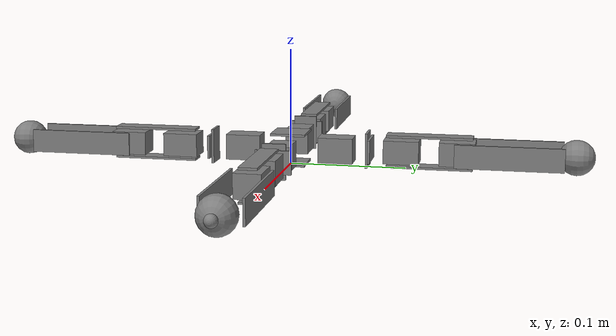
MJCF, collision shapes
<?xml version="1.0" ?>
<!-- Generated using onshape-to-robot -->
<!-- OnShape https://cad.onshape.com/documents/11a7f59e37f711d732274fca/w/7807518dc67487ad405722c8/e/5233c6445c575366a6cc0d50 -->
<mujoco model="quadruped_mujoco">
    <compiler angle="radian" meshdir="assets" autolimits="true"/>
    <option noslip_iterations="1"/>
    <default>
        <default class="quadruped_mujoco">
            <joint frictionloss="0.1" armature="0.005"/>
            <position kp="50" dampratio="1"/>
            <default class="visual">
                <geom type="mesh" contype="0" conaffinity="0" group="2"/>
            </default>
            <default class="collision">
                <geom group="3"/>
            </default>
        </default>
    </default>
    <worldbody>
        <!-- Link body -->
        <body name="body" pos="0 0 0" quat="1 0 0 0" childclass="quadruped_mujoco">
            <freejoint name="body_freejoint"/>
            <inertial pos="-2.68123e-18 7.95593e-19 0.0143384" mass="0.0808736" fullinertia="7.37408e-05 7.37408e-05 0.000135878 -7.58445e-21 -2.2764e-21 1.71779e-21"/>
            <!-- Part body -->
            <!-- Mesh body -->
            <geom type="mesh" class="visual" pos="-4.02184e-18 1.95168e-18 0.0143384" quat="1 0 0 0" mesh="body" material="body_material"/>
            <geom class="collision" pos="0 3.46945e-18 0.0275" quat="0 1 0 0" type="box" size="0.015 0.015 0.001"/>
            <geom class="collision" pos="0 0 0.0011" quat="1 0 0 0" type="box" size="0.015 0.015 0.001"/>
            <geom class="collision" pos="-2.48001e-18 -0.0405 0.0143" quat="0 0 0 1" type="box" size="0.01 0.015 0.011"/>
            <geom class="collision" pos="0.0405 8.66205e-18 0.0143" quat="0.707107 0 0 -0.707107" type="box" size="0.01 0.015 0.011"/>
            <geom class="collision" pos="-2.87964e-18 0.0405 0.0143" quat="1 0 0 4.16334e-16" type="box" size="0.01 0.015 0.011"/>
            <geom class="collision" pos="-0.0405 -2.24473e-18 0.0143" quat="0.707107 -2.77556e-16 -1.11022e-16 0.707107" type="box" size="0.01 0.015 0.011"/>
            <!-- Link doubleu -->
            <body name="doubleu" pos="-0.0485 -8.5303e-18 -0.0007" quat="3.98474e-16 -0.707107 -0.707107 5.80555e-16">
                <!-- Joint from body to doubleu -->
                <joint name="leg1_a" type="hinge"/>
                <inertial pos="4.20868e-19 -0.0203 -0.01615" mass="0.00830698" fullinertia="2.78361e-06 1.9255e-06 2.78361e-06 -3.98268e-22 -3.70822e-22 1.87309e-22"/>
                <!-- Part doubleu -->
                <!-- Mesh doubleu -->
                <geom type="mesh" class="visual" pos="4.20868e-19 -0.0203 -0.01615" quat="4.75548e-16 0.707107 0.707107 -6.12841e-16" mesh="doubleu" material="doubleu_material"/>
                <geom class="collision" pos="-2.25526e-31 -0.0191 -0.01615" quat="0.707107 0.707107 -0 -1.95559e-30" type="box" size="0.01 0.015 0.001"/>
                <geom class="collision" pos="-4.23155e-18 -0.0215 -0.01615" quat="0.5 -0.5 -0.5 -0.5" type="box" size="0.01 0.015 0.001"/>
                <!-- Link platesblock -->
                <body name="platesblock" pos="0.015 -0.0406 -0.01615" quat="0.707107 5.10529e-15 -0.707107 -5.14085e-15">
                    <!-- Joint from doubleu to platesblock -->
                    <joint name="leg1_b" type="hinge"/>
                    <inertial pos="5.09544e-15 -0.0315 0.0150372" mass="0.0417755" fullinertia="2.98279e-05 4.6241e-06 2.99828e-05 -2.99773e-12 -9.43397e-21 2.38053e-19"/>
                    <!-- Part platesblock -->
                    <!-- Mesh platesblock -->
                    <geom type="mesh" class="visual" pos="5.09835e-15 -0.0315 0.0150372" quat="0.5 -0.5 -0.5 0.5" mesh="platesblock" material="platesblock_material"/>
                    <geom class="collision" pos="0.0131 -0.0315 0.015" quat="0.5 0.5 -0.5 -0.5" type="box" size="0.0365 0.0075 0.001"/>
                    <geom class="collision" pos="-0.0132 -0.0315 0.015" quat="0.5 0.5 -0.5 -0.5" type="box" size="0.0365 0.0075 0.001"/>
                    <geom class="collision" pos="1.32467e-15 -0.008 0.015" quat="1 1.38778e-17 1.11022e-16 6.60305e-14" type="box" size="0.01 0.015 0.011"/>
                    <geom class="collision" pos="8.87894e-15 -0.055 0.015" quat="6.61062e-14 0 -5.32907e-15 -1" type="box" size="0.01 0.015 0.011"/>
                    <!-- Link leg -->
                    <body name="leg" pos="9.9365e-15 -0.063 5.75928e-16" quat="5.75726e-14 -2.77556e-17 5.32907e-15 1">
                        <!-- Joint from platesblock to leg -->
                        <joint name="leg1_c" type="hinge"/>
                        <inertial pos="-1.68362e-17 0.0533786 0.015" mass="0.0154162" fullinertia="2.13816e-05 3.58407e-06 1.88204e-05 5.18659e-34 1.18621e-36 -3.34624e-35"/>
                        <!-- Part leg -->
                        <!-- Mesh leg -->
                        <geom type="mesh" class="visual" pos="-1.73472e-17 0.0533786 0.015" quat="0.5 -0.5 0.5 -0.5" mesh="leg" material="leg_material"/>
                        <geom class="collision" pos="1.18955e-18 0.035 -0.001" quat="0.707107 0.707107 -0 1.40248e-30" type="box" size="0.01 0.001 0.045"/>
                        <geom class="collision" pos="1.08167e-18 0.035 0.031" quat="0.707107 0.707107 -0 1.40248e-30" type="box" size="0.01 0.001 0.045"/>
                        <geom class="collision" pos="1.69072e-18 0.09 0.015" quat="0.707107 0.707107 -0 1.40248e-30" type="sphere" size="0.015"/>
                    </body>
                </body>
            </body>
            <!-- Link doubleu_2 -->
            <body name="doubleu_2" pos="-4.75344e-19 -0.0485 -0.0007" quat="3.33067e-16 -1.64508e-15 1 -1.39654e-16">
                <!-- Joint from body to doubleu_2 -->
                <joint name="leg2_a" type="hinge"/>
                <inertial pos="-2.11219e-17 -0.0203 -0.015" mass="0.00830698" fullinertia="2.78361e-06 1.9255e-06 2.78361e-06 -2.00168e-21 -2.69222e-22 9.24504e-21"/>
                <!-- Part doubleu_2 -->
                <!-- Mesh doubleu_2 -->
                <geom type="mesh" class="visual" pos="-2.11219e-17 -0.0203 -0.015" quat="2.22045e-16 -1.50248e-15 1 -2.76539e-17" mesh="doubleu_2" material="doubleu_2_material"/>
                <geom class="collision" pos="-4.7317e-17 -0.0215 -0.015" quat="0.5 -0.5 -0.5 -0.5" type="box" size="0.01 0.015 0.001"/>
                <geom class="collision" pos="6.16298e-33 -0.0191 -0.015" quat="0.707107 0.707107 0 2.78124e-32" type="box" size="0.01 0.015 0.001"/>
                <!-- Link platesblock_2 -->
                <body name="platesblock_2" pos="0.015 -0.0406 -0.015" quat="0.5 -0.5 -0.5 0.5">
                    <!-- Joint from doubleu_2 to platesblock_2 -->
                    <joint name="leg2_b" type="hinge"/>
                    <inertial pos="-0.0315 -3.93756e-16 0.0150372" mass="0.0417755" fullinertia="4.6241e-06 2.98279e-05 2.99828e-05 2.99773e-12 1.27996e-20 -5.0039e-21"/>
                    <!-- Part platesblock_2 -->
                    <!-- Mesh platesblock_2 -->
                    <geom type="mesh" class="visual" pos="-0.0315 -3.95517e-16 0.0150372" quat="0.5 -0.5 -0.5 -0.5" mesh="platesblock_2" material="platesblock_2_material"/>
                    <geom class="collision" pos="-0.0315 -0.0131 0.015" quat="9.99201e-16 9.33878e-16 -0.707107 -0.707107" type="box" size="0.0365 0.0075 0.001"/>
                    <geom class="collision" pos="-0.0315 0.0132 0.015" quat="6.72223e-16 1.25117e-15 -0.707107 -0.707107" type="box" size="0.0365 0.0075 0.001"/>
                    <geom class="collision" pos="-0.008 3.4288e-16 0.015" quat="0.707107 0 0 -0.707107" type="box" size="0.01 0.015 0.011"/>
                    <geom class="collision" pos="-0.055 -1.12171e-15 0.015" quat="0.707107 -8.88178e-16 -1.11022e-15 0.707107" type="box" size="0.01 0.015 0.011"/>
                    <!-- Link leg_2 -->
                    <body name="leg_2" pos="-0.063 -1.14492e-15 -2.60209e-17" quat="0.707107 -9.25028e-16 -7.77156e-16 0.707107">
                        <!-- Joint from platesblock_2 to leg_2 -->
                        <joint name="leg2_c" type="hinge"/>
                        <inertial pos="-1.72851e-17 0.0533786 0.015" mass="0.0154162" fullinertia="2.13816e-05 3.58407e-06 1.88204e-05 1.37976e-34 6.14915e-36 -4.08223e-36"/>
                        <!-- Part leg_2 -->
                        <!-- Mesh leg_2 -->
                        <geom type="mesh" class="visual" pos="-1.73472e-17 0.0533786 0.015" quat="2.02369e-14 0.707107 -1.96509e-14 0.707107" mesh="leg_2" material="leg_2_material"/>
                        <geom class="collision" pos="1.28349e-18 0.035 -0.001" quat="0.707107 0.707107 -0 4.87538e-32" type="box" size="0.01 0.001 0.045"/>
                        <geom class="collision" pos="3.67559e-19 0.035 0.031" quat="0.707107 0.707107 -0 4.87538e-32" type="box" size="0.01 0.001 0.045"/>
                        <geom class="collision" pos="1.10308e-18 0.09 0.015" quat="0.707107 0.707107 -0 4.87538e-32" type="sphere" size="0.015"/>
                    </body>
                </body>
            </body>
            <!-- Link doubleu_3 -->
            <body name="doubleu_3" pos="0.0485 3.19754e-17 -0.0007" quat="3.90397e-16 0.707107 0.707107 -4.17101e-16">
                <!-- Joint from body to doubleu_3 -->
                <joint name="leg3_a" type="hinge"/>
                <inertial pos="-5.56769e-19 0.0203 -0.01615" mass="0.00830698" fullinertia="2.78361e-06 1.9255e-06 2.78361e-06 1.84599e-21 -2.19179e-21 -3.30468e-21"/>
                <!-- Part doubleu_3 -->
                <!-- Mesh doubleu_3 -->
                <geom type="mesh" class="visual" pos="-5.56769e-19 0.0203 -0.01615" quat="3.66569e-16 -0.707107 -0.707107 5.18459e-16" mesh="doubleu_3" material="doubleu_3_material"/>
                <geom class="collision" pos="-6.18683e-18 0.0215 -0.01615" quat="0.5 0.5 0.5 -0.5" type="box" size="0.01 0.015 0.001"/>
                <geom class="collision" pos="1.16519e-32 0.0191 -0.01615" quat="0.707107 -0.707107 -0 -1.656e-31" type="box" size="0.01 0.015 0.001"/>
                <!-- Link platesblock_3 -->
                <body name="platesblock_3" pos="-0.015 0.0406 -0.01615" quat="0.5 -0.5 0.5 -0.5">
                    <!-- Joint from doubleu_3 to platesblock_3 -->
                    <joint name="leg3_b" type="hinge"/>
                    <inertial pos="-0.0315 -1.26282e-15 0.0150372" mass="0.0417755" fullinertia="4.6241e-06 2.98279e-05 2.99828e-05 2.99773e-12 1.21343e-20 -2.02021e-21"/>
                    <!-- Part platesblock_3 -->
                    <!-- Mesh platesblock_3 -->
                    <geom type="mesh" class="visual" pos="-0.0315 -1.26288e-15 0.0150372" quat="2.54853e-14 -2.77416e-14 0.707107 0.707107" mesh="platesblock_3" material="platesblock_3_material"/>
                    <geom class="collision" pos="-0.0315 -0.0131 0.015" quat="6.11317e-15 7.40046e-15 -0.707107 -0.707107" type="box" size="0.0365 0.0075 0.001"/>
                    <geom class="collision" pos="-0.0315 0.0132 0.015" quat="7.42612e-15 6.14462e-15 -0.707107 -0.707107" type="box" size="0.0365 0.0075 0.001"/>
                    <geom class="collision" pos="-0.008 -1.00186e-16 0.015" quat="0.707107 -1.02668e-18 2.22045e-16 -0.707107" type="box" size="0.01 0.015 0.011"/>
                    <geom class="collision" pos="-0.055 -2.43769e-15 0.015" quat="0.707107 1.72703e-16 -1.55431e-15 0.707107" type="box" size="0.01 0.015 0.011"/>
                    <!-- Link leg_3 -->
                    <body name="leg_3" pos="-0.063 -2.5431e-15 6.41848e-17" quat="0.707107 1.87399e-15 -1.66533e-15 0.707107">
                        <!-- Joint from platesblock_3 to leg_3 -->
                        <joint name="leg3_c" type="hinge"/>
                        <inertial pos="-1.68795e-17 0.0533786 0.015" mass="0.0154162" fullinertia="2.13816e-05 3.58407e-06 1.88204e-05 3.68123e-35 6.16462e-36 -2.58096e-34"/>
                        <!-- Part leg_3 -->
                        <!-- Mesh leg_3 -->
                        <geom type="mesh" class="visual" pos="-1.73472e-17 0.0533786 0.015" quat="0.5 0.5 0.5 0.5" mesh="leg_3" material="leg_3_material"/>
                        <geom class="collision" pos="2.12482e-18 0.035 -0.001" quat="0.707107 0.707107 -0 -0" type="box" size="0.01 0.001 0.045"/>
                        <geom class="collision" pos="1.65589e-18 0.035 0.031" quat="0.707107 0.707107 -0 -0" type="box" size="0.01 0.001 0.045"/>
                        <geom class="collision" pos="1.71688e-18 0.09 0.015" quat="0.707107 0.707107 -0 -0" type="sphere" size="0.015"/>
                        <!-- Frame leg_tip (dummy link + fixed joint) -->
                        <site name="leg_tip" pos="-3.64292e-17 0.1053 0.015" quat="2.85151e-17 1.33078e-16 -0.707107 -0.707107"/>
                    </body>
                </body>
            </body>
            <!-- Link doubleu_4 -->
            <body name="doubleu_4" pos="3.81639e-17 0.0485 -0.0007" quat="1.11022e-16 1.0542e-16 -1 3.76491e-15">
                <!-- Joint from body to doubleu_4 -->
                <joint name="leg4_a" type="hinge"/>
                <inertial pos="-4.61075e-17 0.0203 -0.01615" mass="0.00830698" fullinertia="2.78361e-06 1.9255e-06 2.78361e-06 4.31663e-21 1.74197e-22 -3.17881e-20"/>
                <!-- Part doubleu_4 -->
                <!-- Mesh doubleu_4 -->
                <geom type="mesh" class="visual" pos="-4.61075e-17 0.0203 -0.01615" quat="0 1.09762e-16 -1 3.55993e-15" mesh="doubleu_4" material="doubleu_4_material"/>
                <geom class="collision" pos="-9.72883e-17 0.0215 -0.01615" quat="0.5 0.5 0.5 -0.5" type="box" size="0.01 0.015 0.001"/>
                <geom class="collision" pos="0 0.0191 -0.01615" quat="0.707107 -0.707107 -0 -4.15692e-33" type="box" size="0.01 0.015 0.001"/>
                <!-- Link platesblock_4 -->
                <body name="platesblock_4" pos="-0.015 0.0406 -0.01615" quat="0.5 -0.5 0.5 -0.5">
                    <!-- Joint from doubleu_4 to platesblock_4 -->
                    <joint name="leg4_b" type="hinge"/>
                    <inertial pos="-0.0315 -5.44238e-16 0.0135372" mass="0.0417755" fullinertia="4.6241e-06 2.98279e-05 2.99828e-05 2.99773e-12 -6.82938e-20 8.10969e-21"/>
                    <!-- Part platesblock_4 -->
                    <!-- Mesh platesblock_4 -->
                    <geom type="mesh" class="visual" pos="-0.0315 -5.46438e-16 0.0135372" quat="0.5 -0.5 0.5 0.5" mesh="platesblock_4" material="platesblock_4_material"/>
                    <geom class="collision" pos="-0.0315 -0.0131 0.0135" quat="3.33067e-16 2.1654e-15 -0.707107 -0.707107" type="box" size="0.0365 0.0075 0.001"/>
                    <geom class="collision" pos="-0.0315 0.0132 0.0135" quat="9.4369e-16 1.33227e-15 -0.707107 -0.707107" type="box" size="0.0365 0.0075 0.001"/>
                    <geom class="collision" pos="-0.008 2.01842e-16 0.0135" quat="0.707107 1.27974e-15 1.66533e-15 -0.707107" type="box" size="0.01 0.015 0.011"/>
                    <geom class="collision" pos="-0.055 -1.27734e-15 0.0135" quat="0.707107 7.49401e-16 -2.55351e-15 0.707107" type="box" size="0.01 0.015 0.011"/>
                    <!-- Link leg_4 -->
                    <body name="leg_4" pos="-0.063 -1.22471e-15 -0.0015" quat="0.707107 3.10617e-15 8.88178e-16 -0.707107">
                        <!-- Joint from platesblock_4 to leg_4 -->
                        <joint name="leg4_c" type="hinge"/>
                        <inertial pos="-1.83109e-17 -0.0533786 0.015" mass="0.0154162" fullinertia="2.13816e-05 3.58407e-06 1.88204e-05 2.07075e-34 -1.18725e-35 -1.43223e-36"/>
                        <!-- Part leg_4 -->
                        <!-- Mesh leg_4 -->
                        <geom type="mesh" class="visual" pos="-1.9082e-17 -0.0533786 0.015" quat="2.76434e-14 0.707107 2.58682e-14 -0.707107" mesh="leg_4" material="leg_4_material"/>
                        <geom class="collision" pos="2.18025e-20 -0.035 0.031" quat="0.707107 -0.707107 0 1.33787e-30" type="box" size="0.01 0.001 0.045"/>
                        <geom class="collision" pos="5.49158e-19 -0.035 -0.001" quat="0.707107 -0.707107 0 1.33787e-30" type="box" size="0.01 0.001 0.045"/>
                        <geom class="collision" pos="-4.08409e-19 -0.09 0.015" quat="0.707107 -0.707107 0 1.33787e-30" type="sphere" size="0.015"/>
                    </body>
                </body>
            </body>
        </body>
    </worldbody>
    <asset>
        <mesh file="merged/platesblock_4.stl"/>
        <mesh file="merged/platesblock_3.stl"/>
        <mesh file="merged/leg_3.stl"/>
        <mesh file="merged/leg_4.stl"/>
        <mesh file="merged/platesblock_2.stl"/>
        <mesh file="merged/doubleu_2.stl"/>
        <mesh file="merged/doubleu_4.stl"/>
        <mesh file="merged/leg.stl"/>
        <mesh file="merged/doubleu_3.stl"/>
        <mesh file="merged/platesblock.stl"/>
        <mesh file="merged/leg_2.stl"/>
        <mesh file="merged/body.stl"/>
        <mesh file="merged/doubleu.stl"/>
        <material name="body_material" rgba="0.546445 0.490703 0.424602 1"/>
        <material name="doubleu_material" rgba="0.972549 0.529412 0.00392157 1"/>
        <material name="platesblock_material" rgba="0.5601 0.491944 0.411121 1"/>
        <material name="leg_material" rgba="0.972549 0.529412 0.00392157 1"/>
        <material name="doubleu_2_material" rgba="0.972549 0.529412 0.00392157 1"/>
        <material name="platesblock_2_material" rgba="0.5601 0.491944 0.411121 1"/>
        <material name="leg_2_material" rgba="0.972549 0.529412 0.00392157 1"/>
        <material name="doubleu_3_material" rgba="0.972549 0.529412 0.00392157 1"/>
        <material name="platesblock_3_material" rgba="0.5601 0.491944 0.411121 1"/>
        <material name="leg_3_material" rgba="0.972549 0.529412 0.00392157 1"/>
        <material name="doubleu_4_material" rgba="0.972549 0.529412 0.00392157 1"/>
        <material name="platesblock_4_material" rgba="0.5601 0.491944 0.411121 1"/>
        <material name="leg_4_material" rgba="0.972549 0.529412 0.00392157 1"/>
    </asset>
    <actuator>
        <position class="quadruped_mujoco" name="leg1_c" joint="leg1_c" forcerange="-1 1" ctrlrange="-3 3"/>
        <position class="quadruped_mujoco" name="leg1_b" joint="leg1_b" forcerange="-1 1" ctrlrange="-3 3"/>
        <position class="quadruped_mujoco" name="leg1_a" joint="leg1_a" forcerange="-1 1" ctrlrange="-3 3"/>
        <position class="quadruped_mujoco" name="leg2_c" joint="leg2_c" forcerange="-1 1" ctrlrange="-3 3"/>
        <position class="quadruped_mujoco" name="leg2_b" joint="leg2_b" forcerange="-1 1" ctrlrange="-3 3"/>
        <position class="quadruped_mujoco" name="leg2_a" joint="leg2_a" forcerange="-1 1" ctrlrange="-3 3"/>
        <position class="quadruped_mujoco" name="leg3_c" joint="leg3_c" forcerange="-1 1" ctrlrange="-3 3"/>
        <position class="quadruped_mujoco" name="leg3_b" joint="leg3_b" forcerange="-1 1" ctrlrange="-3 3"/>
        <position class="quadruped_mujoco" name="leg3_a" joint="leg3_a" forcerange="-1 1" ctrlrange="-3 3"/>
        <position class="quadruped_mujoco" name="leg4_c" joint="leg4_c" forcerange="-1 1" ctrlrange="-3 3"/>
        <position class="quadruped_mujoco" name="leg4_b" joint="leg4_b" forcerange="-1 1" ctrlrange="-3 3"/>
        <position class="quadruped_mujoco" name="leg4_a" joint="leg4_a" forcerange="-1 1" ctrlrange="-3 3"/>
    </actuator>
    <equality/>
</mujoco>
